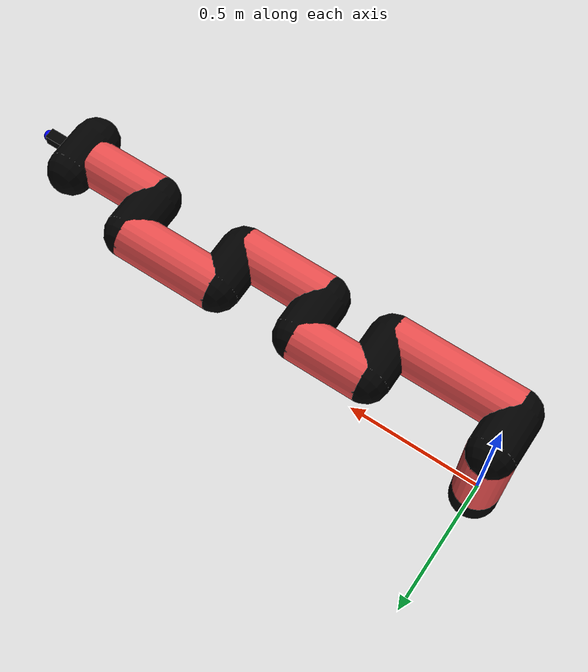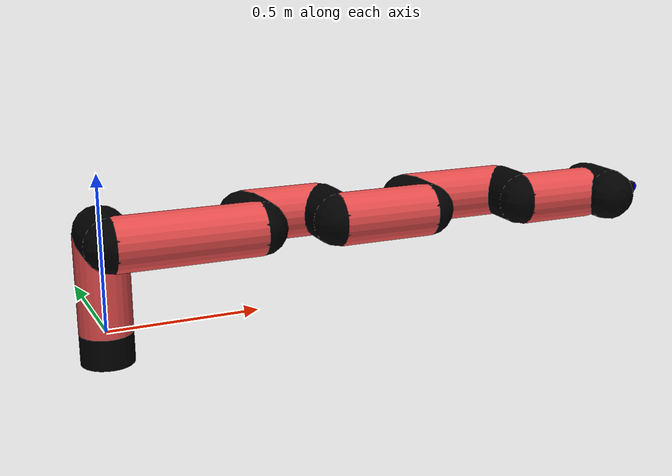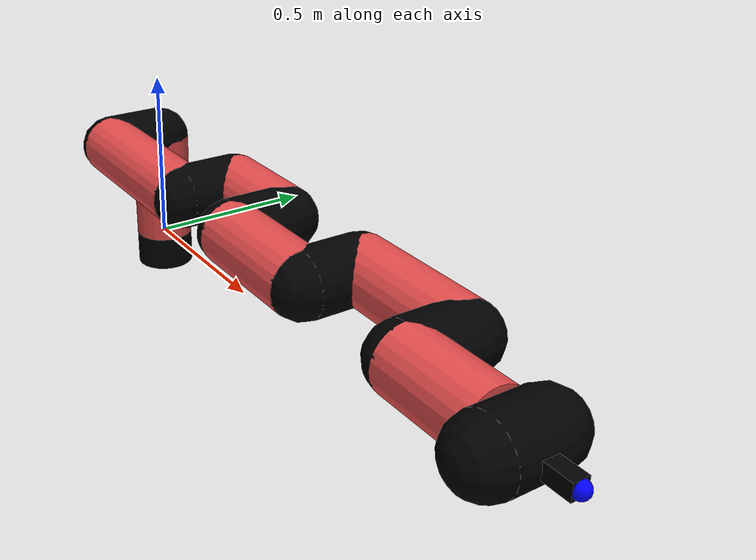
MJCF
<mujoco model="manipulator">
		<compiler angle="degree" coordinate="local" inertiafromgeom="auto" meshdir="meshes/"/>
		<option gravity="0 0 0" integrator="RK4" iterations="30" timestep="0.01"/>

		<default>
		<joint armature="1" limited="true" stiffness="10" damping="15" frictionloss="5.0"/>
		<geom conaffinity="1" condim="3" contype="1" friction=".5 .1 .1" margin="0.002"/>
		<motor ctrllimited="true"/>
		<position ctrllimited="true"/>
		</default>

		<asset>
		<texture builtin="gradient" height="100" rgb1="1.0 1.0 1.0" rgb2="1.0 1.0 1.0" type="skybox" width="100"/>
		<texture builtin="flat" height="32" name="arm_tex" rgb1="0.9 0.3 0.3" type="2d" width="32"/>
		<texture builtin="flat" height="32" name="gripper_tex" rgb1="0.0 0.0 0.0" type="cube" width="32"/>

		<material name="arm_mat" shininess="0.1" specular="0.1" texture="arm_tex"/>
		<material name="gripper_mat" shininess="1" specular="1" texture="gripper_tex"/>
		</asset>

		<worldbody>
		<light cutoff="45" diffuse=".8 .8 .8" dir="0 0.16 -1" directional="false" name="light" pos="0 -2.0 8.0" specular="0.3 0.3 0.3"/>

		<body name="base_link" pos="0 0 -0.1">
		<geom fromto="0 0 0 0 0 0.1" material="arm_mat" name="base_link" rgba="0.0 0.0 0.0 1" size="0.085" type="cylinder"/>
		</body>

		<body name="l1" pos="0 0 0">
<geom fromto="0 0 0 0 0 0.32" material="arm_mat" name="l1" rgba="0.9 0.3 0.3 1" size="0.085" type="cylinder"/>
<geom fromto="0 0 0.32 0 -0.16 0.32" material="arm_mat" name="l1_ex" rgba="0.0 0.0 0.0 1" size="0.085" type="capsule"/>
<joint axis="0 0 1" name="j1" pos="0 0 0" range="-90 90" damping="36.64" frictionloss="12.13"/>

<body name="l2" pos="0 -0.16 0.32">
<geom fromto="0 0 0 0.46 0 0" material="arm_mat" name="l2" rgba="0.9 0.3 0.3 1" size="0.085" type="cylinder"/>
<geom fromto="0.46 0 0 0.46 0.16 0" material="arm_mat" name="l2_ex" rgba="0.0 0.0 0.0 1" size="0.085" type="capsule"/>
<joint axis="0.0 1.0 0.0" name="j2" pos="0 0 0" range="-90 60" damping="26.26" frictionloss="7.52"/>

<body name="l3" pos="0.46 0.16 0">
<geom fromto="0 0 0 0.26 0 0" material="arm_mat" name="l3" rgba="0.9 0.3 0.3 1" size="0.085" type="cylinder"/>
<geom fromto="0.26 0 0 0.26 -0.16 0" material="arm_mat" name="l3_ex" rgba="0.0 0.0 0.0 1" size="0.085" type="capsule"/>
<joint axis="0.0 1.0 0.0" name="j3" pos="0 0 0" range="-30 60" damping="31.9" frictionloss="7.53"/>

<body name="l4" pos="0.26 -0.16 0">
<geom fromto="0 0 0 0.32 0 0" material="arm_mat" name="l4" rgba="0.9 0.3 0.3 1" size="0.085" type="cylinder"/>
<geom fromto="0.32 0 0 0.32 0.16 0" material="arm_mat" name="l4_ex" rgba="0.0 0.0 0.0 1" size="0.085" type="capsule"/>
<joint axis="0.0 1.0 0.0" name="j4" pos="0 0 0" range="-30 60" damping="35.36" frictionloss="8.92"/>

<body name="l5" pos="0.32 0.16 0">
<geom fromto="0 0 0 0.36 0 0" material="arm_mat" name="l5" rgba="0.9 0.3 0.3 1" size="0.085" type="cylinder"/>
<geom fromto="0.36 0 0 0.36 -0.16 0" material="arm_mat" name="l5_ex" rgba="0.0 0.0 0.0 1" size="0.085" type="capsule"/>
<joint axis="0.0 1.0 0.0" name="j5" pos="0 0 0" range="-30 60" damping="24.15" frictionloss="7.89"/>

<body name="l6" pos="0.36 -0.16 0">
<geom fromto="0 0 0 0.26 0 0" material="arm_mat" name="l6" rgba="0.9 0.3 0.3 1" size="0.085" type="cylinder"/>
<joint axis="0.0 1.0 0.0" name="j6" pos="0 0 0" range="-30 60" damping="25.17" frictionloss="7.66"/>

<body name="gripper" pos="0.26 0 0">
<geom fromto="0.05 -0.07 0 0.05 0.07 0" material="gripper_mat" name="gripper" rgba="0.0 0.0 0.0 1" size="0.085" type="capsule"/><joint axis="1 0 0" name="j7" pos="0 0 0" range="-90 90" damping="15" frictionloss="5.0"/><body name="finger" pos="0.1 0 0">
<geom fromto="0 0.0 0 0.1 0.0 0" material="gripper_mat" name="finger" rgba="0.0 0.0 0.0 1" size="0.020 0.06 0.06" type="box"/>
</body>
<site name="current" pos="0.2 0. 0.0" rgba="0. 0. 1.0 1" size="0.02" type="sphere"/>
</body>
</body>
</body>
</body>
</body>
</body>
</body>
</worldbody>
<actuator>
<motor ctrllimited="true" ctrlrange="-1.0 1.0" joint="j1" gear="99.64"/>
<motor ctrllimited="true" ctrlrange="-1.0 1.0" joint="j2" gear="65.74"/>
<motor ctrllimited="true" ctrlrange="-1.0 1.0" joint="j3" gear="97.17"/>
<motor ctrllimited="true" ctrlrange="-1.0 1.0" joint="j4" gear="80.94"/>
<motor ctrllimited="true" ctrlrange="-1.0 1.0" joint="j5" gear="65.99"/>
<motor ctrllimited="true" ctrlrange="-1.0 1.0" joint="j6" gear="66.27"/>
<motor ctrllimited="true" ctrlrange="-1.0 1.0" joint="j7" gear="80"/>
</actuator>
</mujoco>
